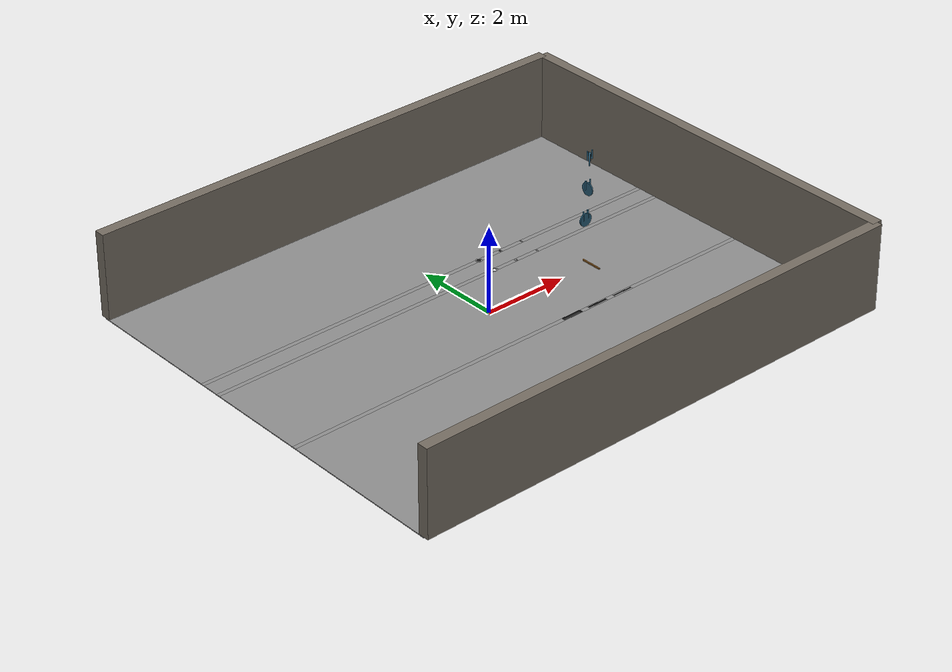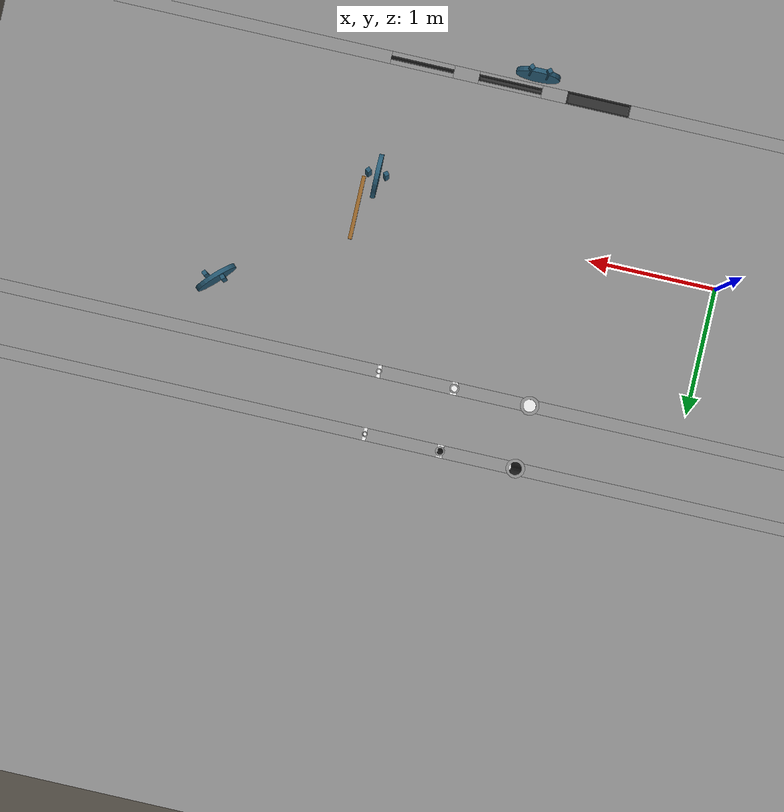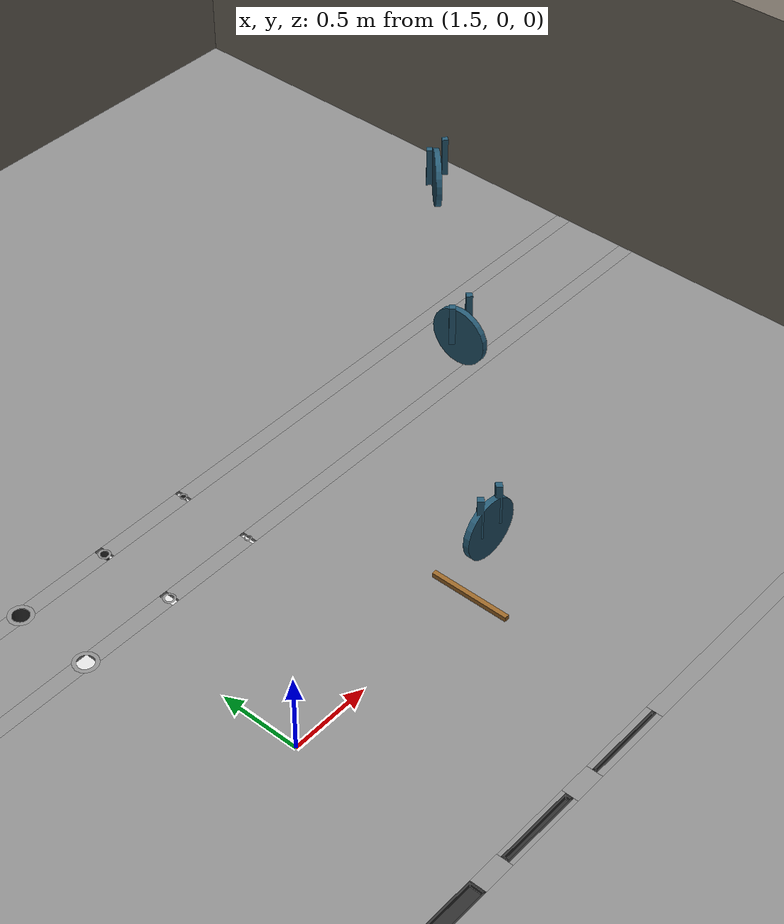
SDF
<?xml version="1.0" ?>
<sdf version="1.6">
  <world name="lidar_placement">
    <gravity>0 0 -9.81</gravity>
    <magnetic_field>6.0e-6 2.3e-5 -4.2e-5</magnetic_field>
    <atmosphere type="adiabatic" />

    <light name="sun" type="directional">
      <cast_shadows>true</cast_shadows>
      <pose>0 0 10 0 0 0</pose>
      <diffuse>0.8 0.8 0.8 1</diffuse>
      <specular>0.2 0.2 0.2 1</specular>
      <attenuation>
        <range>1000</range>
        <constant>0.9</constant>
        <linear>0.01</linear>
        <quadratic>0.001</quadratic>
      </attenuation>
      <direction>-0.5 0.1 -0.9</direction>
    </light>

    <model name="ground_with_defects">
      <static>true</static>
      <!-- 穴部分だけ床タイルを抜き、LiDAR rayが地面に当たらない領域を作る。 -->
      <link name="ground_tiles">
        <collision name="south_area_collision">
          <pose>0 -3.125 -0.01 0 0 0</pose>
          <geometry>
            <box><size>12.0 3.75 0.02</size></box>
          </geometry>
        </collision>
        <visual name="south_area_visual">
          <pose>0 -3.125 -0.01 0 0 0</pose>
          <geometry>
            <box><size>12.0 3.75 0.02</size></box>
          </geometry>
          <material>
            <ambient>0.30 0.30 0.30 1</ambient>
            <diffuse>0.55 0.55 0.55 1</diffuse>
          </material>
        </visual>
        <collision name="center_area_collision">
          <pose>0 0 -0.01 0 0 0</pose>
          <geometry>
            <box><size>12.0 2.30 0.02</size></box>
          </geometry>
        </collision>
        <visual name="center_area_visual">
          <pose>0 0 -0.01 0 0 0</pose>
          <geometry>
            <box><size>12.0 2.30 0.02</size></box>
          </geometry>
          <material>
            <ambient>0.30 0.30 0.30 1</ambient>
            <diffuse>0.55 0.55 0.55 1</diffuse>
          </material>
        </visual>
        <collision name="north_area_collision">
          <pose>0 3.375 -0.01 0 0 0</pose>
          <geometry>
            <box><size>12.0 3.25 0.02</size></box>
          </geometry>
        </collision>
        <visual name="north_area_visual">
          <pose>0 3.375 -0.01 0 0 0</pose>
          <geometry>
            <box><size>12.0 3.25 0.02</size></box>
          </geometry>
          <material>
            <ambient>0.30 0.30 0.30 1</ambient>
            <diffuse>0.55 0.55 0.55 1</diffuse>
          </material>
        </visual>

        <!-- 右側の溝帯だけ床面を抜き、溝の幅に応じて残る床面を補う。 -->
        <collision name="south_hole_row_left_collision">
          <pose>-2.525 -1.2 -0.01 0 0 0</pose>
          <geometry><box><size>6.95 0.10 0.02</size></box></geometry>
        </collision>
        <visual name="south_hole_row_left_visual">
          <pose>-2.525 -1.2 -0.01 0 0 0</pose>
          <geometry><box><size>6.95 0.10 0.02</size></box></geometry>
          <material><ambient>0.30 0.30 0.30 1</ambient><diffuse>0.55 0.55 0.55 1</diffuse></material>
        </visual>
        <collision name="south_hole_row_mid_1_collision">
          <pose>1.55 -1.2 -0.01 0 0 0</pose>
          <geometry><box><size>0.20 0.10 0.02</size></box></geometry>
        </collision>
        <visual name="south_hole_row_mid_1_visual">
          <pose>1.55 -1.2 -0.01 0 0 0</pose>
          <geometry><box><size>0.20 0.10 0.02</size></box></geometry>
          <material><ambient>0.30 0.30 0.30 1</ambient><diffuse>0.55 0.55 0.55 1</diffuse></material>
        </visual>
        <collision name="south_hole_row_mid_2_collision">
          <pose>2.25 -1.2 -0.01 0 0 0</pose>
          <geometry><box><size>0.20 0.10 0.02</size></box></geometry>
        </collision>
        <visual name="south_hole_row_mid_2_visual">
          <pose>2.25 -1.2 -0.01 0 0 0</pose>
          <geometry><box><size>0.20 0.10 0.02</size></box></geometry>
          <material><ambient>0.30 0.30 0.30 1</ambient><diffuse>0.55 0.55 0.55 1</diffuse></material>
        </visual>
        <collision name="south_hole_row_right_collision">
          <pose>4.425 -1.2 -0.01 0 0 0</pose>
          <geometry><box><size>3.15 0.10 0.02</size></box></geometry>
        </collision>
        <visual name="south_hole_row_right_visual">
          <pose>4.425 -1.2 -0.01 0 0 0</pose>
          <geometry><box><size>3.15 0.10 0.02</size></box></geometry>
          <material><ambient>0.30 0.30 0.30 1</ambient><diffuse>0.55 0.55 0.55 1</diffuse></material>
        </visual>
        <collision name="groove_50mm_lower_shoulder_collision">
          <pose>1.9 -1.2375 -0.01 0 0 0</pose>
          <geometry><box><size>0.50 0.025 0.02</size></box></geometry>
        </collision>
        <visual name="groove_50mm_lower_shoulder_visual">
          <pose>1.9 -1.2375 -0.01 0 0 0</pose>
          <geometry><box><size>0.50 0.025 0.02</size></box></geometry>
          <material><ambient>0.30 0.30 0.30 1</ambient><diffuse>0.55 0.55 0.55 1</diffuse></material>
        </visual>
        <collision name="groove_50mm_upper_shoulder_collision">
          <pose>1.9 -1.1625 -0.01 0 0 0</pose>
          <geometry><box><size>0.50 0.025 0.02</size></box></geometry>
        </collision>
        <visual name="groove_50mm_upper_shoulder_visual">
          <pose>1.9 -1.1625 -0.01 0 0 0</pose>
          <geometry><box><size>0.50 0.025 0.02</size></box></geometry>
          <material><ambient>0.30 0.30 0.30 1</ambient><diffuse>0.55 0.55 0.55 1</diffuse></material>
        </visual>
        <collision name="groove_30mm_lower_shoulder_collision">
          <pose>2.6 -1.2325 -0.01 0 0 0</pose>
          <geometry><box><size>0.50 0.035 0.02</size></box></geometry>
        </collision>
        <visual name="groove_30mm_lower_shoulder_visual">
          <pose>2.6 -1.2325 -0.01 0 0 0</pose>
          <geometry><box><size>0.50 0.035 0.02</size></box></geometry>
          <material><ambient>0.30 0.30 0.30 1</ambient><diffuse>0.55 0.55 0.55 1</diffuse></material>
        </visual>
        <collision name="groove_30mm_upper_shoulder_collision">
          <pose>2.6 -1.1675 -0.01 0 0 0</pose>
          <geometry><box><size>0.50 0.035 0.02</size></box></geometry>
        </collision>
        <visual name="groove_30mm_upper_shoulder_visual">
          <pose>2.6 -1.1675 -0.01 0 0 0</pose>
          <geometry><box><size>0.50 0.035 0.02</size></box></geometry>
          <material><ambient>0.30 0.30 0.30 1</ambient><diffuse>0.55 0.55 0.55 1</diffuse></material>
        </visual>

        <!-- 左側の穴列は2列にまとめ、右側の溝と干渉しない位置へ寄せる。 -->
        <collision name="north_hole_row_left_collision">
          <pose>-2.425 1.2 -0.01 0 0 0</pose>
          <geometry><box><size>7.15 0.10 0.02</size></box></geometry>
        </collision>
        <visual name="north_hole_row_left_visual">
          <pose>-2.425 1.2 -0.01 0 0 0</pose>
          <geometry><box><size>7.15 0.10 0.02</size></box></geometry>
          <material><ambient>0.30 0.30 0.30 1</ambient><diffuse>0.55 0.55 0.55 1</diffuse></material>
        </visual>
        <collision name="north_hole_row_mid_1_collision">
          <pose>1.5125 1.2 -0.01 0 0 0</pose>
          <geometry><box><size>0.525 0.10 0.02</size></box></geometry>
        </collision>
        <visual name="north_hole_row_mid_1_visual">
          <pose>1.5125 1.2 -0.01 0 0 0</pose>
          <geometry><box><size>0.525 0.10 0.02</size></box></geometry>
          <material><ambient>0.30 0.30 0.30 1</ambient><diffuse>0.55 0.55 0.55 1</diffuse></material>
        </visual>
        <collision name="north_hole_row_mid_2_collision">
          <pose>2.105 1.2 -0.01 0 0 0</pose>
          <geometry><box><size>0.56 0.10 0.02</size></box></geometry>
        </collision>
        <visual name="north_hole_row_mid_2_visual">
          <pose>2.105 1.2 -0.01 0 0 0</pose>
          <geometry><box><size>0.56 0.10 0.02</size></box></geometry>
          <material><ambient>0.30 0.30 0.30 1</ambient><diffuse>0.55 0.55 0.55 1</diffuse></material>
        </visual>
        <collision name="north_hole_row_right_collision">
          <pose>4.2075 1.2 -0.01 0 0 0</pose>
          <geometry><box><size>3.585 0.10 0.02</size></box></geometry>
        </collision>
        <visual name="north_hole_row_right_visual">
          <pose>4.2075 1.2 -0.01 0 0 0</pose>
          <geometry><box><size>3.585 0.10 0.02</size></box></geometry>
          <material><ambient>0.30 0.30 0.30 1</ambient><diffuse>0.55 0.55 0.55 1</diffuse></material>
        </visual>
        <collision name="left_hole_between_rows_collision">
          <pose>0 1.45 -0.01 0 0 0</pose>
          <geometry><box><size>12.0 0.40 0.02</size></box></geometry>
        </collision>
        <visual name="left_hole_between_rows_visual">
          <pose>0 1.45 -0.01 0 0 0</pose>
          <geometry><box><size>12.0 0.40 0.02</size></box></geometry>
          <material><ambient>0.30 0.30 0.30 1</ambient><diffuse>0.55 0.55 0.55 1</diffuse></material>
        </visual>
        <collision name="left_lined_hole_row_left_collision">
          <pose>-2.425 1.7 -0.01 0 0 0</pose>
          <geometry><box><size>7.15 0.10 0.02</size></box></geometry>
        </collision>
        <visual name="left_lined_hole_row_left_visual">
          <pose>-2.425 1.7 -0.01 0 0 0</pose>
          <geometry><box><size>7.15 0.10 0.02</size></box></geometry>
          <material><ambient>0.30 0.30 0.30 1</ambient><diffuse>0.55 0.55 0.55 1</diffuse></material>
        </visual>
        <collision name="left_lined_hole_row_mid_1_collision">
          <pose>1.5125 1.7 -0.01 0 0 0</pose>
          <geometry><box><size>0.525 0.10 0.02</size></box></geometry>
        </collision>
        <visual name="left_lined_hole_row_mid_1_visual">
          <pose>1.5125 1.7 -0.01 0 0 0</pose>
          <geometry><box><size>0.525 0.10 0.02</size></box></geometry>
          <material><ambient>0.30 0.30 0.30 1</ambient><diffuse>0.55 0.55 0.55 1</diffuse></material>
        </visual>
        <collision name="left_lined_hole_row_mid_2_collision">
          <pose>2.105 1.7 -0.01 0 0 0</pose>
          <geometry><box><size>0.56 0.10 0.02</size></box></geometry>
        </collision>
        <visual name="left_lined_hole_row_mid_2_visual">
          <pose>2.105 1.7 -0.01 0 0 0</pose>
          <geometry><box><size>0.56 0.10 0.02</size></box></geometry>
          <material><ambient>0.30 0.30 0.30 1</ambient><diffuse>0.55 0.55 0.55 1</diffuse></material>
        </visual>
        <collision name="left_lined_hole_row_right_collision">
          <pose>4.2075 1.7 -0.01 0 0 0</pose>
          <geometry><box><size>3.585 0.10 0.02</size></box></geometry>
        </collision>
        <visual name="left_lined_hole_row_right_visual">
          <pose>4.2075 1.7 -0.01 0 0 0</pose>
          <geometry><box><size>3.585 0.10 0.02</size></box></geometry>
          <material><ambient>0.30 0.30 0.30 1</ambient><diffuse>0.55 0.55 0.55 1</diffuse></material>
        </visual>
      </link>

      <!-- 右側には長辺500mm、深さ30mmの溝を3種類配置する。 -->
      <link name="groove_100mm">
        <pose>1.2 -1.2 0 0 0 0</pose>
        <collision name="bottom_collision"><pose>0 0 -0.035 0 0 0</pose><geometry><box><size>0.50 0.10 0.01</size></box></geometry></collision>
        <visual name="bottom_visual"><pose>0 0 -0.035 0 0 0</pose><geometry><box><size>0.50 0.10 0.01</size></box></geometry><material><ambient>0.12 0.12 0.12 1</ambient><diffuse>0.18 0.18 0.18 1</diffuse></material></visual>
        <collision name="long_wall_low_collision"><pose>0 -0.045 -0.015 0 0 0</pose><geometry><box><size>0.50 0.01 0.03</size></box></geometry></collision>
        <visual name="long_wall_low_visual"><pose>0 -0.045 -0.015 0 0 0</pose><geometry><box><size>0.50 0.01 0.03</size></box></geometry><material><ambient>0.12 0.12 0.12 1</ambient><diffuse>0.18 0.18 0.18 1</diffuse></material></visual>
        <collision name="long_wall_high_collision"><pose>0 0.045 -0.015 0 0 0</pose><geometry><box><size>0.50 0.01 0.03</size></box></geometry></collision>
        <visual name="long_wall_high_visual"><pose>0 0.045 -0.015 0 0 0</pose><geometry><box><size>0.50 0.01 0.03</size></box></geometry><material><ambient>0.12 0.12 0.12 1</ambient><diffuse>0.18 0.18 0.18 1</diffuse></material></visual>
        <collision name="end_wall_front_collision"><pose>0.245 0 -0.015 0 0 0</pose><geometry><box><size>0.01 0.10 0.03</size></box></geometry></collision>
        <visual name="end_wall_front_visual"><pose>0.245 0 -0.015 0 0 0</pose><geometry><box><size>0.01 0.10 0.03</size></box></geometry><material><ambient>0.12 0.12 0.12 1</ambient><diffuse>0.18 0.18 0.18 1</diffuse></material></visual>
        <collision name="end_wall_back_collision"><pose>-0.245 0 -0.015 0 0 0</pose><geometry><box><size>0.01 0.10 0.03</size></box></geometry></collision>
        <visual name="end_wall_back_visual"><pose>-0.245 0 -0.015 0 0 0</pose><geometry><box><size>0.01 0.10 0.03</size></box></geometry><material><ambient>0.12 0.12 0.12 1</ambient><diffuse>0.18 0.18 0.18 1</diffuse></material></visual>
      </link>
      <link name="groove_50mm">
        <pose>1.9 -1.2 0 0 0 0</pose>
        <collision name="bottom_collision"><pose>0 0 -0.035 0 0 0</pose><geometry><box><size>0.50 0.05 0.01</size></box></geometry></collision>
        <visual name="bottom_visual"><pose>0 0 -0.035 0 0 0</pose><geometry><box><size>0.50 0.05 0.01</size></box></geometry><material><ambient>0.12 0.12 0.12 1</ambient><diffuse>0.18 0.18 0.18 1</diffuse></material></visual>
        <collision name="long_wall_low_collision"><pose>0 -0.020 -0.015 0 0 0</pose><geometry><box><size>0.50 0.01 0.03</size></box></geometry></collision>
        <visual name="long_wall_low_visual"><pose>0 -0.020 -0.015 0 0 0</pose><geometry><box><size>0.50 0.01 0.03</size></box></geometry><material><ambient>0.12 0.12 0.12 1</ambient><diffuse>0.18 0.18 0.18 1</diffuse></material></visual>
        <collision name="long_wall_high_collision"><pose>0 0.020 -0.015 0 0 0</pose><geometry><box><size>0.50 0.01 0.03</size></box></geometry></collision>
        <visual name="long_wall_high_visual"><pose>0 0.020 -0.015 0 0 0</pose><geometry><box><size>0.50 0.01 0.03</size></box></geometry><material><ambient>0.12 0.12 0.12 1</ambient><diffuse>0.18 0.18 0.18 1</diffuse></material></visual>
        <collision name="end_wall_front_collision"><pose>0.245 0 -0.015 0 0 0</pose><geometry><box><size>0.01 0.05 0.03</size></box></geometry></collision>
        <visual name="end_wall_front_visual"><pose>0.245 0 -0.015 0 0 0</pose><geometry><box><size>0.01 0.05 0.03</size></box></geometry><material><ambient>0.12 0.12 0.12 1</ambient><diffuse>0.18 0.18 0.18 1</diffuse></material></visual>
        <collision name="end_wall_back_collision"><pose>-0.245 0 -0.015 0 0 0</pose><geometry><box><size>0.01 0.05 0.03</size></box></geometry></collision>
        <visual name="end_wall_back_visual"><pose>-0.245 0 -0.015 0 0 0</pose><geometry><box><size>0.01 0.05 0.03</size></box></geometry><material><ambient>0.12 0.12 0.12 1</ambient><diffuse>0.18 0.18 0.18 1</diffuse></material></visual>
      </link>
      <link name="groove_30mm">
        <pose>2.6 -1.2 0 0 0 0</pose>
        <collision name="bottom_collision"><pose>0 0 -0.035 0 0 0</pose><geometry><box><size>0.50 0.03 0.01</size></box></geometry></collision>
        <visual name="bottom_visual"><pose>0 0 -0.035 0 0 0</pose><geometry><box><size>0.50 0.03 0.01</size></box></geometry><material><ambient>0.12 0.12 0.12 1</ambient><diffuse>0.18 0.18 0.18 1</diffuse></material></visual>
        <collision name="long_wall_low_collision"><pose>0 -0.010 -0.015 0 0 0</pose><geometry><box><size>0.50 0.01 0.03</size></box></geometry></collision>
        <visual name="long_wall_low_visual"><pose>0 -0.010 -0.015 0 0 0</pose><geometry><box><size>0.50 0.01 0.03</size></box></geometry><material><ambient>0.12 0.12 0.12 1</ambient><diffuse>0.18 0.18 0.18 1</diffuse></material></visual>
        <collision name="long_wall_high_collision"><pose>0 0.010 -0.015 0 0 0</pose><geometry><box><size>0.50 0.01 0.03</size></box></geometry></collision>
        <visual name="long_wall_high_visual"><pose>0 0.010 -0.015 0 0 0</pose><geometry><box><size>0.50 0.01 0.03</size></box></geometry><material><ambient>0.12 0.12 0.12 1</ambient><diffuse>0.18 0.18 0.18 1</diffuse></material></visual>
        <collision name="end_wall_front_collision"><pose>0.245 0 -0.015 0 0 0</pose><geometry><box><size>0.01 0.03 0.03</size></box></geometry></collision>
        <visual name="end_wall_front_visual"><pose>0.245 0 -0.015 0 0 0</pose><geometry><box><size>0.01 0.03 0.03</size></box></geometry><material><ambient>0.12 0.12 0.12 1</ambient><diffuse>0.18 0.18 0.18 1</diffuse></material></visual>
        <collision name="end_wall_back_collision"><pose>-0.245 0 -0.015 0 0 0</pose><geometry><box><size>0.01 0.03 0.03</size></box></geometry></collision>
        <visual name="end_wall_back_visual"><pose>-0.245 0 -0.015 0 0 0</pose><geometry><box><size>0.01 0.03 0.03</size></box></geometry><material><ambient>0.12 0.12 0.12 1</ambient><diffuse>0.18 0.18 0.18 1</diffuse></material></visual>
      </link>

      <!-- 左側1列目は地面だけに穴が開いたタイプ。円環メッシュで円形の縁を作る。 -->
      <link name="open_hole_100mm">
        <pose>1.2 1.2 0.001 0 0 0</pose>
        <collision name="rim_collision"><geometry><mesh><uri>../meshes/annulus_unit.obj</uri><scale>0.05 0.05 1</scale></mesh></geometry></collision>
        <visual name="rim_visual"><geometry><mesh><uri>../meshes/annulus_unit.obj</uri><scale>0.05 0.05 1</scale></mesh></geometry><material><ambient>0.30 0.30 0.30 1</ambient><diffuse>0.55 0.55 0.55 1</diffuse></material></visual>
      </link>
      <link name="open_hole_50mm">
        <pose>1.8 1.2 0.001 0 0 0</pose>
        <collision name="rim_collision"><geometry><mesh><uri>../meshes/annulus_unit.obj</uri><scale>0.025 0.025 1</scale></mesh></geometry></collision>
        <visual name="rim_visual"><geometry><mesh><uri>../meshes/annulus_unit.obj</uri><scale>0.025 0.025 1</scale></mesh></geometry><material><ambient>0.30 0.30 0.30 1</ambient><diffuse>0.55 0.55 0.55 1</diffuse></material></visual>
      </link>
      <link name="open_hole_30mm">
        <pose>2.4 1.2 0.001 0 0 0</pose>
        <collision name="rim_collision"><geometry><mesh><uri>../meshes/annulus_unit.obj</uri><scale>0.015 0.015 1</scale></mesh></geometry></collision>
        <visual name="rim_visual"><geometry><mesh><uri>../meshes/annulus_unit.obj</uri><scale>0.015 0.015 1</scale></mesh></geometry><material><ambient>0.30 0.30 0.30 1</ambient><diffuse>0.55 0.55 0.55 1</diffuse></material></visual>
      </link>

      <!-- 左側2列目は地面下へ1mの中空円柱が伸びるタイプ。縁と円筒壁を別メッシュで表現する。 -->
      <link name="lined_hole_100mm">
        <pose>1.2 1.7 0.001 0 0 0</pose>
        <collision name="rim_collision"><geometry><mesh><uri>../meshes/annulus_unit.obj</uri><scale>0.05 0.05 1</scale></mesh></geometry></collision>
        <visual name="rim_visual"><geometry><mesh><uri>../meshes/annulus_unit.obj</uri><scale>0.05 0.05 1</scale></mesh></geometry><material><ambient>0.30 0.30 0.30 1</ambient><diffuse>0.55 0.55 0.55 1</diffuse></material></visual>
        <collision name="wall_collision"><pose>0 0 -0.001 0 0 0</pose><geometry><mesh><uri>../meshes/cylinder_wall_unit.obj</uri><scale>0.05 0.05 1.0</scale></mesh></geometry></collision>
        <visual name="wall_visual"><pose>0 0 -0.001 0 0 0</pose><geometry><mesh><uri>../meshes/cylinder_wall_unit.obj</uri><scale>0.05 0.05 1.0</scale></mesh></geometry><material><ambient>0.12 0.12 0.12 1</ambient><diffuse>0.18 0.18 0.18 1</diffuse></material></visual>
      </link>
      <link name="lined_hole_50mm">
        <pose>1.8 1.7 0.001 0 0 0</pose>
        <collision name="rim_collision"><geometry><mesh><uri>../meshes/annulus_unit.obj</uri><scale>0.025 0.025 1</scale></mesh></geometry></collision>
        <visual name="rim_visual"><geometry><mesh><uri>../meshes/annulus_unit.obj</uri><scale>0.025 0.025 1</scale></mesh></geometry><material><ambient>0.30 0.30 0.30 1</ambient><diffuse>0.55 0.55 0.55 1</diffuse></material></visual>
        <collision name="wall_collision"><pose>0 0 -0.001 0 0 0</pose><geometry><mesh><uri>../meshes/cylinder_wall_unit.obj</uri><scale>0.025 0.025 1.0</scale></mesh></geometry></collision>
        <visual name="wall_visual"><pose>0 0 -0.001 0 0 0</pose><geometry><mesh><uri>../meshes/cylinder_wall_unit.obj</uri><scale>0.025 0.025 1.0</scale></mesh></geometry><material><ambient>0.12 0.12 0.12 1</ambient><diffuse>0.18 0.18 0.18 1</diffuse></material></visual>
      </link>
      <link name="lined_hole_30mm">
        <pose>2.4 1.7 0.001 0 0 0</pose>
        <collision name="rim_collision"><geometry><mesh><uri>../meshes/annulus_unit.obj</uri><scale>0.015 0.015 1</scale></mesh></geometry></collision>
        <visual name="rim_visual"><geometry><mesh><uri>../meshes/annulus_unit.obj</uri><scale>0.015 0.015 1</scale></mesh></geometry><material><ambient>0.30 0.30 0.30 1</ambient><diffuse>0.55 0.55 0.55 1</diffuse></material></visual>
        <collision name="wall_collision"><pose>0 0 -0.001 0 0 0</pose><geometry><mesh><uri>../meshes/cylinder_wall_unit.obj</uri><scale>0.015 0.015 1.0</scale></mesh></geometry></collision>
        <visual name="wall_visual"><pose>0 0 -0.001 0 0 0</pose><geometry><mesh><uri>../meshes/cylinder_wall_unit.obj</uri><scale>0.015 0.015 1.0</scale></mesh></geometry><material><ambient>0.12 0.12 0.12 1</ambient><diffuse>0.18 0.18 0.18 1</diffuse></material></visual>
      </link>

      <!-- ロボット前方に30mm段差を置き、低い出っ張りの検出を確認する。 -->
      <link name="floor_bump">
        <pose>2.85 0 0.015 0 0 0</pose>
        <collision name="collision"><geometry><box><size>0.03 0.50 0.03</size></box></geometry></collision>
        <visual name="visual">
          <geometry><box><size>0.03 0.50 0.03</size></box></geometry>
          <material><ambient>0.45 0.30 0.12 1</ambient><diffuse>0.60 0.40 0.16 1</diffuse></material>
        </visual>
      </link>
    </model>

    <model name="dock_wall_north">
      <static>true</static>
      <pose>0 5.0 1.0 0 0 0</pose>
      <link name="link">
        <collision name="collision">
          <geometry>
            <box><size>12.0 0.25 2.0</size></box>
          </geometry>
        </collision>
        <visual name="visual">
          <geometry>
            <box><size>12.0 0.25 2.0</size></box>
          </geometry>
          <material>
            <ambient>0.45 0.42 0.38 1</ambient>
            <diffuse>0.45 0.42 0.38 1</diffuse>
          </material>
        </visual>
      </link>
    </model>

    <model name="dock_wall_south">
      <static>true</static>
      <pose>0 -5.0 1.0 0 0 0</pose>
      <link name="link">
        <collision name="collision">
          <geometry>
            <box><size>12.0 0.25 2.0</size></box>
          </geometry>
        </collision>
        <visual name="visual">
          <geometry>
            <box><size>12.0 0.25 2.0</size></box>
          </geometry>
          <material>
            <ambient>0.45 0.42 0.38 1</ambient>
            <diffuse>0.45 0.42 0.38 1</diffuse>
          </material>
        </visual>
      </link>
    </model>

    <model name="dock_wall_east">
      <static>true</static>
      <pose>6.0 0 1.0 0 0 0</pose>
      <link name="link">
        <collision name="collision">
          <geometry>
            <box><size>0.25 10.0 2.0</size></box>
          </geometry>
        </collision>
        <visual name="visual">
          <geometry>
            <box><size>0.25 10.0 2.0</size></box>
          </geometry>
          <material>
            <ambient>0.45 0.42 0.38 1</ambient>
            <diffuse>0.45 0.42 0.38 1</diffuse>
          </material>
        </visual>
      </link>
    </model>

    <model name="ceiling">
      <static>true</static>
      <pose>0 0 2.05 0 0 0</pose>
      <link name="link">
        <collision name="collision">
          <geometry>
            <box><size>12.0 10.25 0.10</size></box>
          </geometry>
        </collision>
        <visual name="visual">
          <geometry>
            <box><size>12.0 10.25 0.10</size></box>
          </geometry>
          <material>
            <ambient>0.35 0.35 0.38 0</ambient>
            <diffuse>0.35 0.35 0.38 0</diffuse>
          </material>
          <transparency>1.0</transparency>
        </visual>
      </link>
    </model>

    <model name="ceiling_disk_1">
      <static>true</static>
      <pose>1.8 -0.90 1.885 0 0 0</pose>
      <link name="disk_link">
        <pose>0 0 0 1.57079632679 0 0</pose>
        <visual name="disk_visual">
          <geometry>
            <cylinder>
              <radius>0.15</radius>
              <length>0.03</length>
            </cylinder>
          </geometry>
          <material>
            <ambient>0.15 0.35 0.45 1</ambient>
            <diffuse>0.15 0.35 0.45 1</diffuse>
          </material>
        </visual>
        <collision name="disk_collision">
          <geometry>
            <cylinder>
              <radius>0.15</radius>
              <length>0.03</length>
            </cylinder>
          </geometry>
        </collision>
      </link>
      <link name="brace_left_link">
        <pose>-0.06 0 0.10 0 1.57079632679 0.72</pose>
        <visual name="brace_left_visual">
          <geometry>
            <box><size>0.21 0.03 0.03</size></box>
          </geometry>
          <material>
            <ambient>0.15 0.35 0.45 1</ambient>
            <diffuse>0.15 0.35 0.45 1</diffuse>
          </material>
        </visual>
        <collision name="brace_left_collision">
          <geometry>
            <box><size>0.21 0.03 0.03</size></box>
          </geometry>
        </collision>
      </link>
      <link name="brace_right_link">
        <pose>0.06 0 0.10 0 1.57079632679 -0.72</pose>
        <visual name="brace_right_visual">
          <geometry>
            <box><size>0.21 0.03 0.03</size></box>
          </geometry>
          <material>
            <ambient>0.15 0.35 0.45 1</ambient>
            <diffuse>0.15 0.35 0.45 1</diffuse>
          </material>
        </visual>
        <collision name="brace_right_collision">
          <geometry>
            <box><size>0.21 0.03 0.03</size></box>
          </geometry>
        </collision>
      </link>
    </model>

    <model name="ceiling_disk_2">
      <static>true</static>
      <pose>2.7 0.0 1.885 0 0 0</pose>
      <link name="disk_link">
        <pose>0 0 0 1.57079632679 0 1.57079632679</pose>
        <visual name="disk_visual">
          <geometry>
            <cylinder>
              <radius>0.15</radius>
              <length>0.03</length>
            </cylinder>
          </geometry>
          <material>
            <ambient>0.15 0.35 0.45 1</ambient>
            <diffuse>0.15 0.35 0.45 1</diffuse>
          </material>
        </visual>
        <collision name="disk_collision">
          <geometry>
            <cylinder>
              <radius>0.15</radius>
              <length>0.03</length>
            </cylinder>
          </geometry>
        </collision>
      </link>
      <link name="brace_left_link">
        <pose>-0.06 0 0.10 0 1.57079632679 0.72</pose>
        <visual name="brace_left_visual">
          <geometry>
            <box><size>0.21 0.03 0.03</size></box>
          </geometry>
          <material>
            <ambient>0.15 0.35 0.45 1</ambient>
            <diffuse>0.15 0.35 0.45 1</diffuse>
          </material>
        </visual>
        <collision name="brace_left_collision">
          <geometry>
            <box><size>0.21 0.03 0.03</size></box>
          </geometry>
        </collision>
      </link>
      <link name="brace_right_link">
        <pose>0.06 0 0.10 0 1.57079632679 -0.72</pose>
        <visual name="brace_right_visual">
          <geometry>
            <box><size>0.21 0.03 0.03</size></box>
          </geometry>
          <material>
            <ambient>0.15 0.35 0.45 1</ambient>
            <diffuse>0.15 0.35 0.45 1</diffuse>
          </material>
        </visual>
        <collision name="brace_right_collision">
          <geometry>
            <box><size>0.21 0.03 0.03</size></box>
          </geometry>
        </collision>
      </link>
    </model>

    <model name="ceiling_disk_3">
      <static>true</static>
      <pose>3.6 0.90 1.885 0 0 0</pose>
      <link name="disk_link">
        <pose>0 0 0 1.57079632679 0 0.78539816339</pose>
        <visual name="disk_visual">
          <geometry>
            <cylinder>
              <radius>0.15</radius>
              <length>0.03</length>
            </cylinder>
          </geometry>
          <material>
            <ambient>0.15 0.35 0.45 1</ambient>
            <diffuse>0.15 0.35 0.45 1</diffuse>
          </material>
        </visual>
        <collision name="disk_collision">
          <geometry>
            <cylinder>
              <radius>0.15</radius>
              <length>0.03</length>
            </cylinder>
          </geometry>
        </collision>
      </link>
      <link name="brace_left_link">
        <pose>-0.06 0 0.10 0 1.57079632679 0.72</pose>
        <visual name="brace_left_visual">
          <geometry>
            <box><size>0.21 0.03 0.03</size></box>
          </geometry>
          <material>
            <ambient>0.15 0.35 0.45 1</ambient>
            <diffuse>0.15 0.35 0.45 1</diffuse>
          </material>
        </visual>
        <collision name="brace_left_collision">
          <geometry>
            <box><size>0.21 0.03 0.03</size></box>
          </geometry>
        </collision>
      </link>
      <link name="brace_right_link">
        <pose>0.06 0 0.10 0 1.57079632679 -0.72</pose>
        <visual name="brace_right_visual">
          <geometry>
            <box><size>0.21 0.03 0.03</size></box>
          </geometry>
          <material>
            <ambient>0.15 0.35 0.45 1</ambient>
            <diffuse>0.15 0.35 0.45 1</diffuse>
          </material>
        </visual>
        <collision name="brace_right_collision">
          <geometry>
            <box><size>0.21 0.03 0.03</size></box>
          </geometry>
        </collision>
      </link>
    </model>
  </world>
</sdf>
